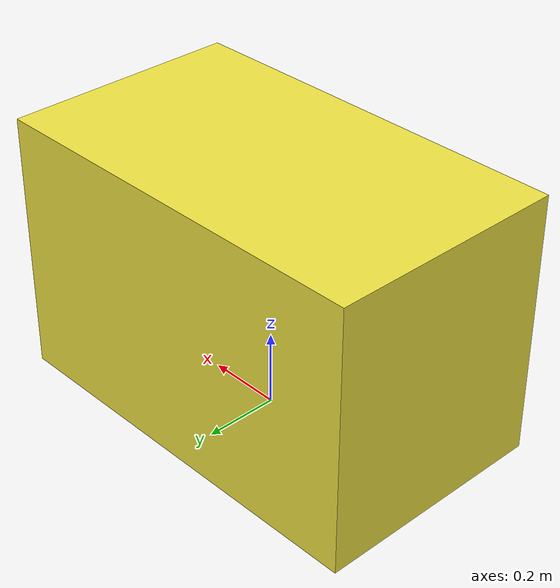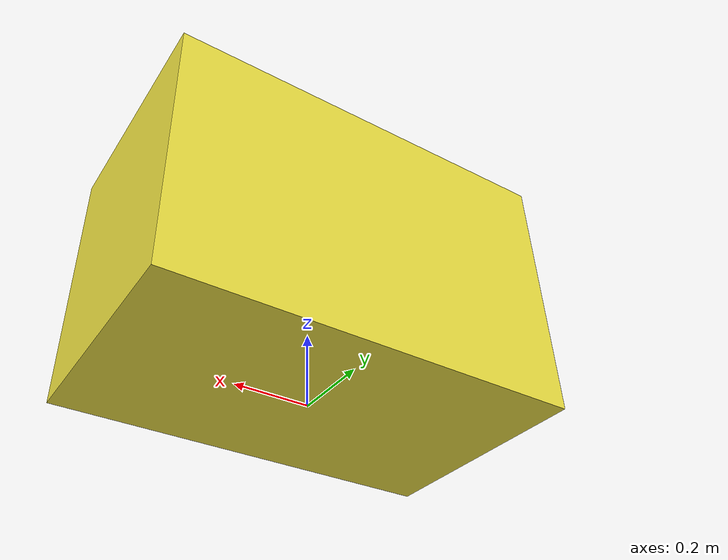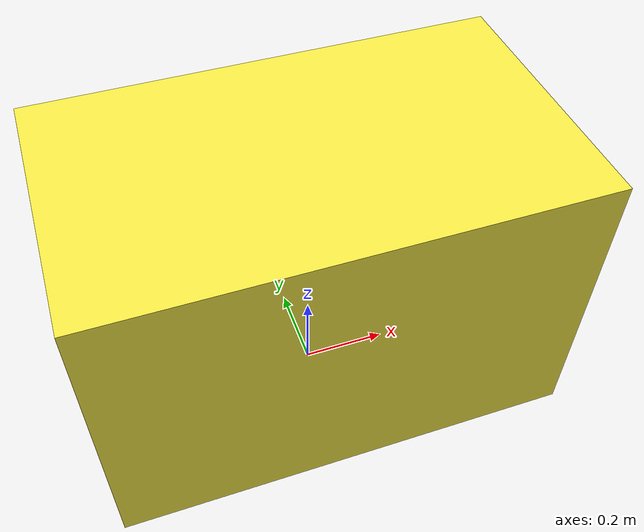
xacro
<?xml version="1.0"?>
<robot name="mobile_base" xmlns:xacro="http://www.ros.org/wiki/xacro">
    <xacro:include filename="$(find gz_virtual_base_system)/urdf/virtual_base_macro.urdf.xacro" />

    <xacro:arg name="root_link" default="world"/>
    <xacro:virtual_base_system root_link="$(arg root_link)" base_link="mobile_base_link"/>

    <link name="mobile_base_link">
        <inertial>
            <origin xyz="0 0 0.35" rpy="0 0 0"/>
            <mass value="397.0"/>
            <inertia
                ixx="29.36" iyy="54.90" izz="51.84"
                ixy="0.0" ixz="0.0" iyz="0.0"/>
        </inertial>
        <visual>
            <origin xyz="0 0 0.35" rpy="0 0 0"/>
            <geometry>
                <box size="1.08 0.63 0.70"/>
            </geometry>
        </visual>
        <collision name="base_collision">
            <origin xyz="0 0 0.35" rpy="0 0 0"/>
            <geometry>
                <box size="1.08 0.63 0.70"/>
            </geometry>
        </collision>
    </link>

    <gazebo>
        <plugin name="gz_ros2_control::GazeboSimROS2ControlPlugin"
            filename="gz_ros2_control-system">
            <parameters>$(find gz_virtual_base_system)/config/controllers_config_example.yaml</parameters>
        </plugin>
    </gazebo>

</robot>

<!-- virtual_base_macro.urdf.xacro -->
<robot xmlns:xacro="http://wiki.ros.org/xacro">
  <xacro:macro name="virtual_base_system" params="root_link:=world base_link:=base">

  <link name="${root_link}"/>

  <joint name="virtual_joint_x" type="prismatic">
    <parent link="${root_link}"/>
    <child link="virtual_base_link_x"/>
    <origin xyz="0 0 0" rpy="0 0 0"/>
    <axis xyz="1 0 0"/>
    <limit lower="-100000" upper="100000" effort="100000" velocity="1"/>
  </joint>
  <joint name="virtual_joint_y" type="prismatic">
    <parent link="virtual_base_link_x"/>
    <child link="virtual_base_link_y"/>
    <origin xyz="0 0 0" rpy="0 0 0"/>
    <axis xyz="0 1 0"/>
    <limit lower="-100000" upper="100000" effort="100000" velocity="1"/>
  </joint>
  <joint name="virtual_joint_yaw" type="continuous">
    <parent link="virtual_base_link_y"/>
    <child link="${base_link}"/>
    <origin xyz="0 0 0" rpy="0 0 0"/>
    <axis xyz="0 0 1"/>
  </joint>
  <link name="virtual_base_link_x">
    <inertial>
      <origin xyz="0 0 0" rpy="0 0 0"/>
      <mass value="0.001"/>
      <inertia ixx="0.001" ixy="0.0" ixz="0.0" iyy="0.001" iyz="0.0" izz="0.001"/>
    </inertial>
  </link>
  <link name="virtual_base_link_y">
    <inertial>
      <origin xyz="0 0 0" rpy="0 0 0"/>
      <mass value="0.001"/>
      <inertia ixx="0.001" ixy="0.0" ixz="0.0" iyy="0.001" iyz="0.0" izz="0.001"/>
    </inertial>
  </link>

  <ros2_control name="virtual_base" type="system">
    <hardware>
      <plugin>gz_virtual_base_system/GazeboVirtualBaseSystem</plugin>
      <param name="x_joint">virtual_joint_x</param>
      <param name="y_joint">virtual_joint_y</param>
      <param name="yaw_joint">virtual_joint_yaw</param>
      <param name="gpio_name">mobile_base</param>
      <!-- Optional body-frame acceleration limits (0 = off). -->
      <param name="max_linear_acc">0</param>
      <param name="max_angular_acc">0</param>
    </hardware>

    <!-- Joint states only. Nothing writes to these directly, the plugin does it after rotating -->
    <joint name="virtual_joint_x">
      <state_interface name="position"/>
      <state_interface name="velocity"/>
    </joint>
    <joint name="virtual_joint_y">
      <state_interface name="position"/>
      <state_interface name="velocity"/>
    </joint>
    <joint name="virtual_joint_yaw">
      <state_interface name="position"/>
      <state_interface name="velocity"/>
    </joint>

    <gpio name="mobile_base">
      <command_interface name="vx"/>
      <command_interface name="vy"/>
      <command_interface name="wz"/>
      <state_interface name="vx"/>
      <state_interface name="vy"/>
      <state_interface name="wz"/>
    </gpio>
  </ros2_control>

  </xacro:macro>
</robot>
